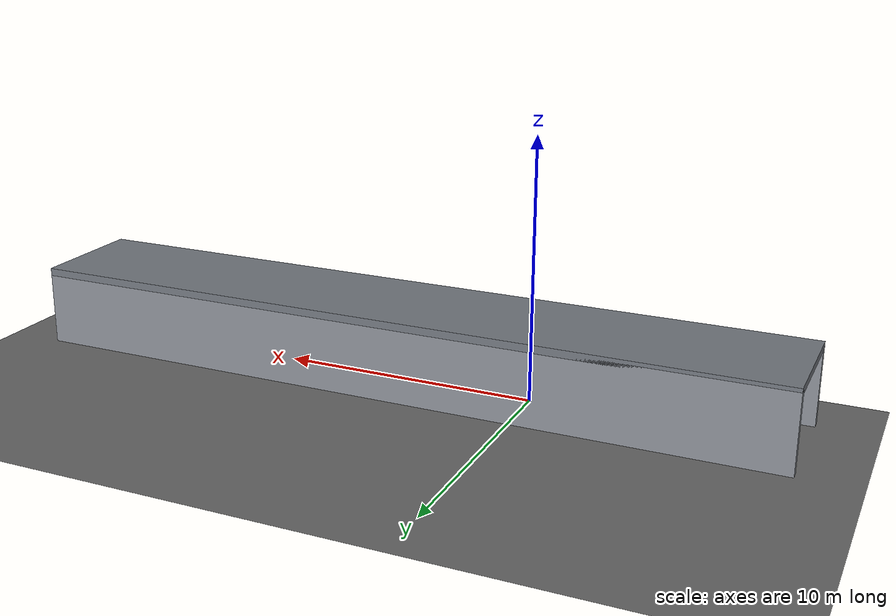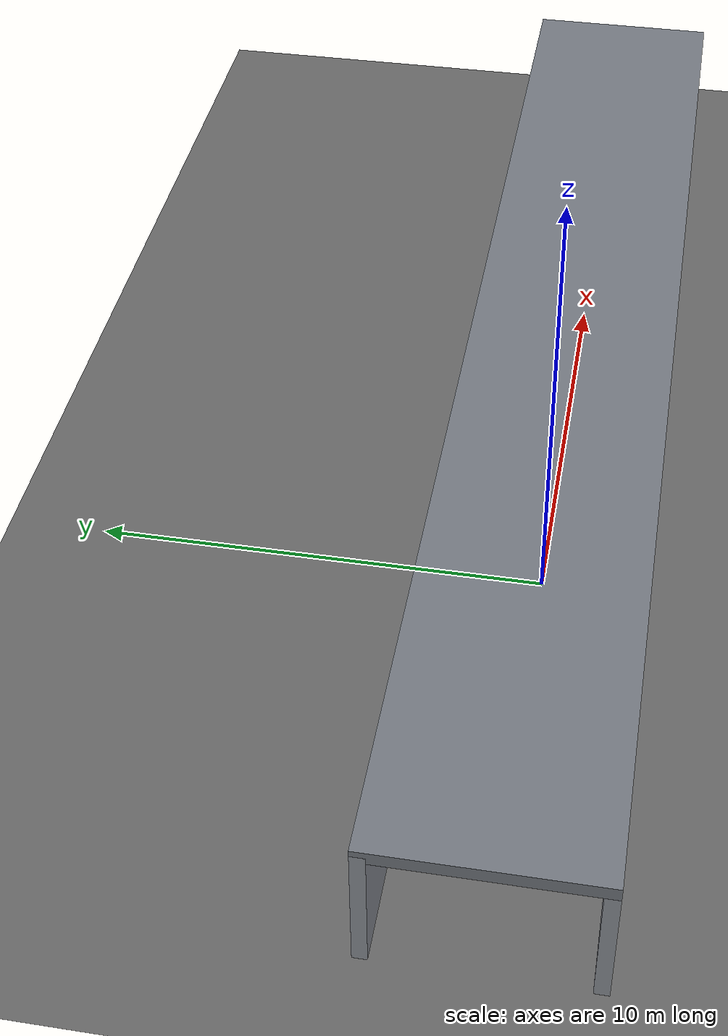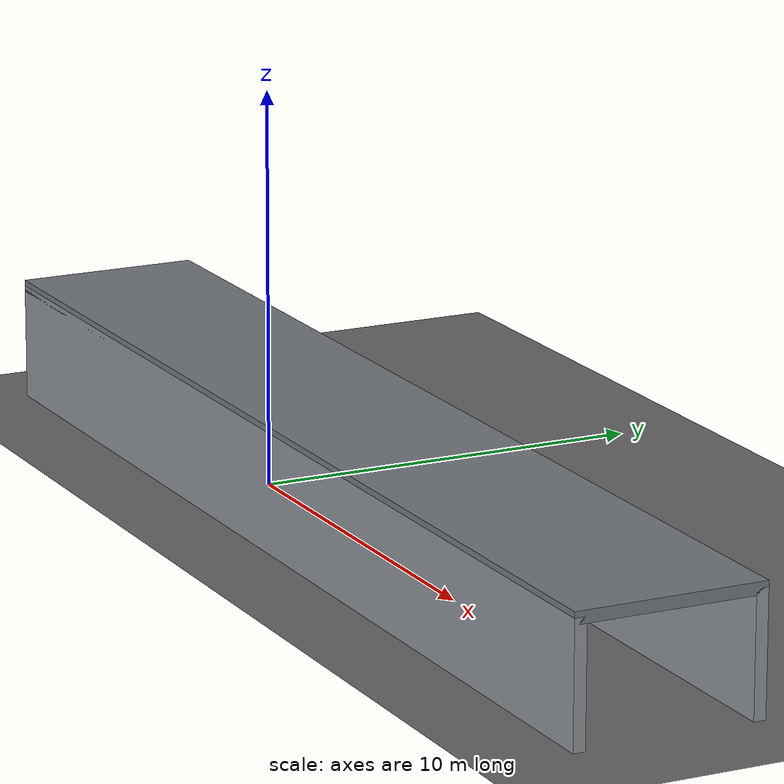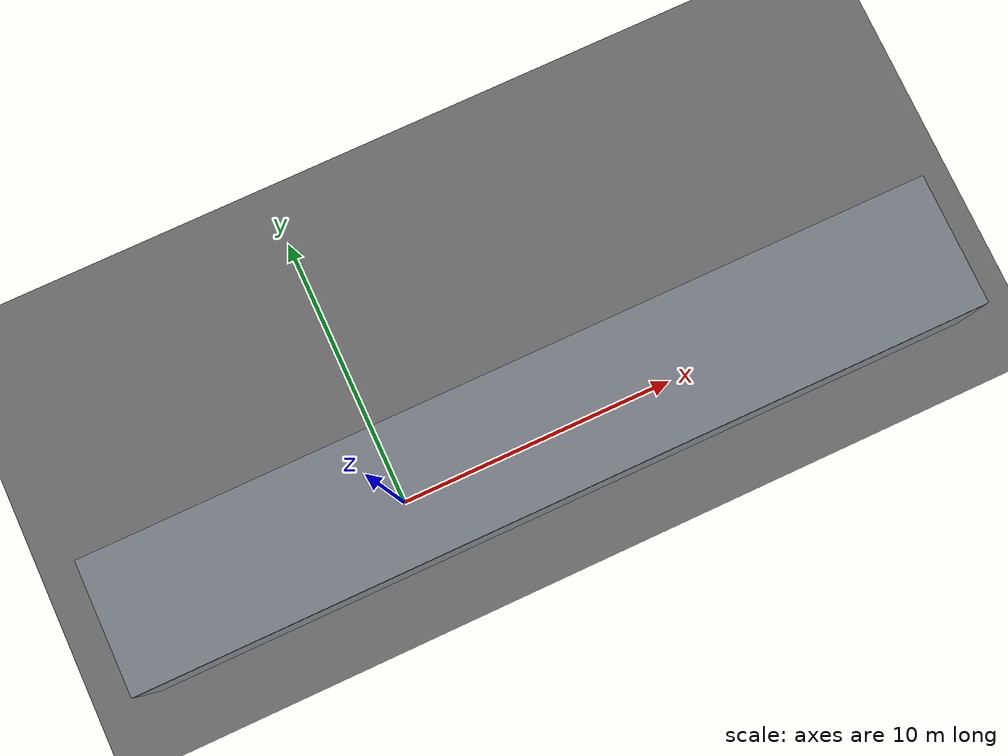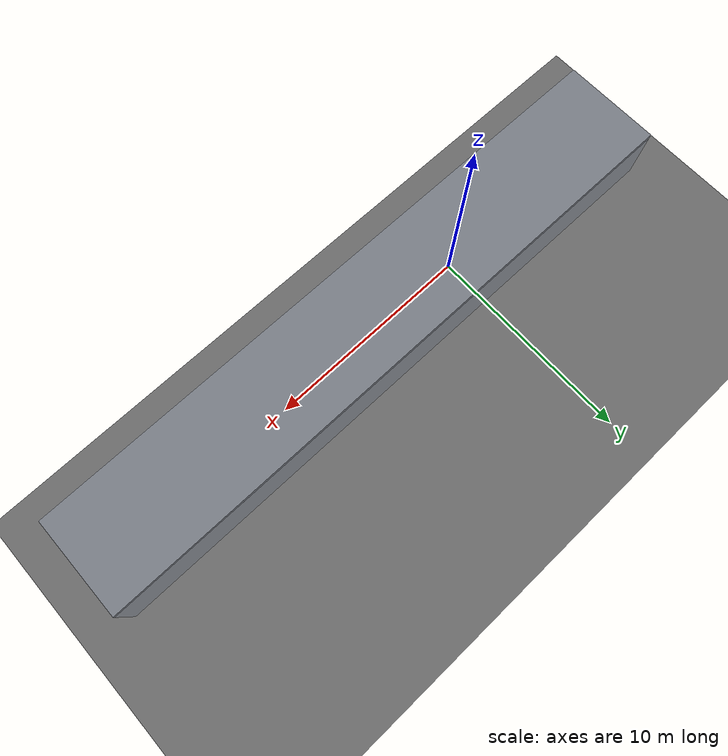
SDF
<?xml version="1.0" ?>
<sdf version="1.6">
  <world name="tunnel_world">
    <scene>
      <ambient>0.25 0.25 0.3 1.0</ambient>
      <background>0.04 0.05 0.08 1.0</background>
      <shadows>true</shadows>
    </scene>

    <!-- Yerel Güneş Işığı (İnternet/Model İndirme Beklemez) -->
    <light type="directional" name="sun">
      <cast_shadows>true</cast_shadows>
      <pose>0 0 10 0 0 0</pose>
      <diffuse>0.8 0.8 0.8 1</diffuse>
      <specular>0.2 0.2 0.2 1</specular>
      <attenuation><range>1000</range><constant>0.9</constant><linear>0.01</linear><quadratic>0.001</quadratic></attenuation>
      <direction>-0.5 0.1 -0.9</direction>
    </light>

    <!-- Yerel Zemin Düzlemi -->
    <model name="ground_plane">
      <static>true</static>
      <link name="link">
        <collision name="collision">
          <geometry><plane><normal>0 0 1</normal><size>100 100</size></plane></geometry>
        </collision>
        <visual name="visual">
          <geometry><plane><normal>0 0 1</normal><size>100 100</size></plane></geometry>
          <material><ambient>0.3 0.3 0.3 1</ambient><diffuse>0.4 0.4 0.4 1</diffuse></material>
        </visual>
      </link>
    </model>

    <!-- 🚁 HARİTALAMA DRONU (QUADCOPTER + KAMERA + LAZER + FENER)          -->
    <model name="mapping_drone">
      <pose>0.0 0.0 0.4 0 0 0</pose>
      <link name="base_link">
        <inertial>
          <mass>1.5</mass>
          <inertia>
            <ixx>0.034</ixx><ixy>0</ixy><ixz>0</ixz>
            <iyy>0.034</iyy><iyz>0</iyz>
            <izz>0.06</izz>
          </inertia>
        </inertial>

        <!-- Dron Ana Gövdesi (Karbon Fiber) -->
        <collision name="body_collision">
          <geometry><box><size>0.40 0.40 0.12</size></box></geometry>
        </collision>
        <visual name="body_visual">
          <geometry><box><size>0.40 0.40 0.12</size></box></geometry>
          <material>
            <ambient>0.15 0.15 0.18 1</ambient>
            <diffuse>0.2 0.2 0.25 1</diffuse>
          </material>
        </visual>

        <!-- 4 Adet Pervane ve Motor -->
        <!-- Ön Sol Motor -->
        <visual name="prop_fl">
          <pose>0.18 0.18 0.08 0 0 0</pose>
          <geometry><cylinder><radius>0.12</radius><length>0.015</length></cylinder></geometry>
          <material><ambient>0.9 0.2 0.1 1</ambient><diffuse>0.9 0.2 0.1 1</diffuse></material>
        </visual>
        <!-- Ön Sağ Motor -->
        <visual name="prop_fr">
          <pose>0.18 -0.18 0.08 0 0 0</pose>
          <geometry><cylinder><radius>0.12</radius><length>0.015</length></cylinder></geometry>
          <material><ambient>0.9 0.2 0.1 1</ambient><diffuse>0.9 0.2 0.1 1</diffuse></material>
        </visual>
        <!-- Arka Sol Motor -->
        <visual name="prop_rl">
          <pose>-0.18 0.18 0.08 0 0 0</pose>
          <geometry><cylinder><radius>0.12</radius><length>0.015</length></cylinder></geometry>
          <material><ambient>0.2 0.2 0.2 1</ambient><diffuse>0.3 0.3 0.3 1</diffuse></material>
        </visual>
        <!-- Arka Sağ Motor -->
        <visual name="prop_rr">
          <pose>-0.18 -0.18 0.08 0 0 0</pose>
          <geometry><cylinder><radius>0.12</radius><length>0.015</length></cylinder></geometry>
          <material><ambient>0.2 0.2 0.2 1</ambient><diffuse>0.3 0.3 0.3 1</diffuse></material>
        </visual>

        <!-- 📷 ÖN HARİTALAMA KAMERASI (1080p / 90° FOV) -->
        <sensor name="camera_front" type="camera">
          <pose>0.22 0.0 0.02 0 0 0</pose>
          <camera>
            <horizontal_fov>1.5708</horizontal_fov>
            <image>
              <width>1280</width>
              <height>720</height>
              <format>R8G8B8</format>
            </image>
            <clip><near>0.05</near><far>100</far></clip>
          </camera>
          <always_on>1</always_on>
          <update_rate>30</update_rate>
          <visualize>true</visualize>
        </sensor>

        <!-- 📏 ZEMİNE BAKAN TFMINI LAZER İRTİFA SENSÖRÜ -->
        <sensor name="laser_altitude" type="ray">
          <pose>0.0 0.0 -0.05 0 1.5708 0</pose>
          <ray>
            <scan><horizontal><samples>1</samples><resolution>1</resolution><min_angle>0</min_angle><max_angle>0</max_angle></horizontal></scan>
            <range><min>0.05</min><max>12.0</max><resolution>0.01</resolution></range>
          </ray>
          <always_on>1</always_on>
          <update_rate>50</update_rate>
          <visualize>true</visualize>
        </sensor>

        <!-- 💡 DRON ÖNÜNDEKİ GÜÇLÜ AYDINLATMA FENERİ (Spotlight) -->
        <light name="drone_spotlight" type="spot">
          <pose>0.25 0.0 0.0 0 0 0</pose>
          <diffuse>1.0 0.98 0.95 1</diffuse>
          <specular>0.8 0.8 0.8 1</specular>
          <attenuation><range>25</range><constant>0.2</constant><linear>0.05</linear><quadratic>0.01</quadratic></attenuation>
          <spot><inner_angle>0.6</inner_angle><outer_angle>1.1</outer_angle><falloff>1.0</falloff></spot>
          <direction>1 0 0</direction>
        </light>

      </link>
    </model>

    <!-- TUNEL SOL DUVAR -->

    <model name="tunnel_wall_left">
      <static>true</static>
      <pose>5.0 2.2 1.5 0 0 0</pose>
      <link name="link">
        <collision name="collision">
          <geometry><box><size>30.0 0.3 3.0</size></box></geometry>
        </collision>
        <visual name="visual">
          <geometry><box><size>30.0 0.3 3.0</size></box></geometry>
          <material>
            <ambient>0.45 0.47 0.50 1</ambient>
            <diffuse>0.55 0.57 0.60 1</diffuse>
          </material>
        </visual>
      </link>
    </model>

    <!-- TUNEL SAG DUVAR -->
    <model name="tunnel_wall_right">
      <static>true</static>
      <pose>5.0 -2.2 1.5 0 0 0</pose>
      <link name="link">
        <collision name="collision">
          <geometry><box><size>30.0 0.3 3.0</size></box></geometry>
        </collision>
        <visual name="visual">
          <geometry><box><size>30.0 0.3 3.0</size></box></geometry>
          <material>
            <ambient>0.45 0.47 0.50 1</ambient>
            <diffuse>0.55 0.57 0.60 1</diffuse>
          </material>
        </visual>
      </link>
    </model>

    <!-- TUNEL TAVANI -->
    <model name="tunnel_ceiling">
      <static>true</static>
      <pose>5.0 0.0 3.0 0 0 0</pose>
      <link name="link">
        <collision name="collision">
          <geometry><box><size>30.0 4.7 0.3</size></box></geometry>
        </collision>
        <visual name="visual">
          <geometry><box><size>30.0 4.7 0.3</size></box></geometry>
          <material>
            <ambient>0.35 0.37 0.40 1</ambient>
            <diffuse>0.45 0.47 0.50 1</diffuse>
          </material>
        </visual>
      </link>
    </model>

    <!-- DARBOGAZ ENGEL 1 -->
    <model name="bottleneck_pillar_1">
      <static>true</static>
      <pose>4.0 1.1 1.2 0 0 0</pose>
      <link name="link">
        <collision name="collision">
          <geometry><cylinder><radius>0.45</radius><length>2.4</length></cylinder></geometry>
        </collision>
        <visual name="visual">
          <geometry><cylinder><radius>0.45</radius><length>2.4</length></cylinder></geometry>
          <material>
            <ambient>0.75 0.25 0.2 1</ambient>
            <diffuse>0.85 0.30 0.25 1</diffuse>
          </material>
        </visual>
      </link>
    </model>

    <!-- DARBOGAZ ENGEL 2 -->
    <model name="bottleneck_pillar_2">
      <static>true</static>
      <pose>10.0 -1.0 1.2 0 0 0</pose>
      <link name="link">
        <collision name="collision">
          <geometry><cylinder><radius>0.50</radius><length>2.4</length></cylinder></geometry>
        </collision>
        <visual name="visual">
          <geometry><cylinder><radius>0.50</radius><length>2.4</length></cylinder></geometry>
          <material>
            <ambient>0.75 0.25 0.2 1</ambient>
            <diffuse>0.85 0.30 0.25 1</diffuse>
          </material>
        </visual>
      </link>
    </model>

  </world>
</sdf>
